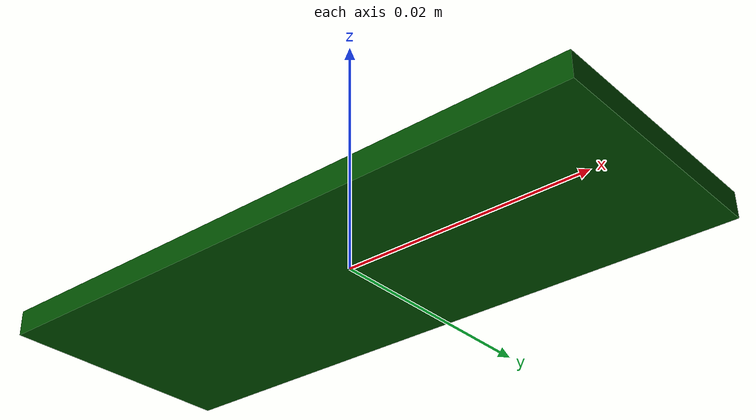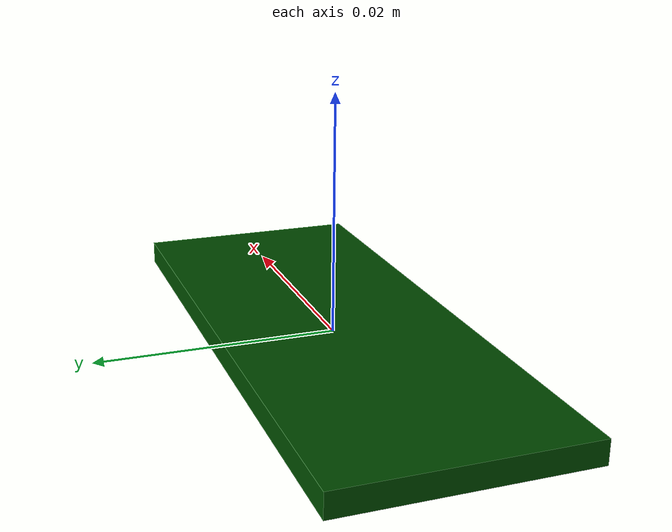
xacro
<?xml version="1.0"?>
<!-- 8-ch フォトリフレクタ (実体は 8×1 px カメラ) -->
<robot name="ae_njl5901ar_8ch" xmlns:xacro="http://ros.org/wiki/xacro">

  <!-- ==== 1) 基板 ==== -->
  <link name="ae_board">
    <inertial>
      <origin xyz="0 0 0" rpy="0 0 0"/>
      <mass value="0.01"/>
      <inertia ixx="1e-6" ixy="0" ixz="0"
               iyy="1e-6" iyz="0" izz="1e-6"/>
    </inertial>
    <visual>
      <origin xyz="0 0 0" rpy="0 0 0"/>
      <geometry><box size="0.05 0.02 0.002"/></geometry>
      <material name="DarkGreen">
        <color rgba="0.0 0.3 0.0 1.0"/>
      </material>
    </visual>
    <collision><geometry><box size="0.05 0.02 0.002"/></geometry></collision>
  </link>

  <!-- ==== 2) カメラリンク ==== -->
  <link name="line_cam_link">
    <inertial>
      <origin xyz="0 0 0" rpy="0 0 0"/>
      <mass value="0.001"/>
      <inertia ixx="1e-6" ixy="0" ixz="0"
               iyy="1e-6" iyz="0" izz="1e-6"/>
    </inertial>
  </link>

  <joint name="line_cam_joint" type="fixed">
    <parent link="ae_board"/>
    <child link="line_cam_link"/>
    <!-- 基板下面に 1 mm だけ貼り付け，下向きに 90° 回転 -->
    <origin xyz="0 0 -0.002" rpy="1.5708 0 0"/>
  </joint>

  <!-- ==== 3) Gazebo センサ ==== -->
  <gazebo reference="line_cam_link">
    <sensor name="line_cam" type="camera">
      <always_on>true</always_on>
      <update_rate>50.0</update_rate>
      <camera>
        <horizontal_fov>0.01</horizontal_fov>
        <image><width>8</width><height>1</height><format>L8</format></image>
        <clip><near>0.001</near><far>1.0</far></clip>
      </camera>

      <plugin name="gazebo_ros_camera" filename="libgazebo_ros_camera.so">
        <camera_name>line_cam</camera_name>
        <image_topic_name>image_raw</image_topic_name>
        <camera_info_topic_name>camera_info</camera_info_topic_name>
        <frame_name>line_cam_link</frame_name>
      </plugin>
    </sensor>
  </gazebo>

</robot>
